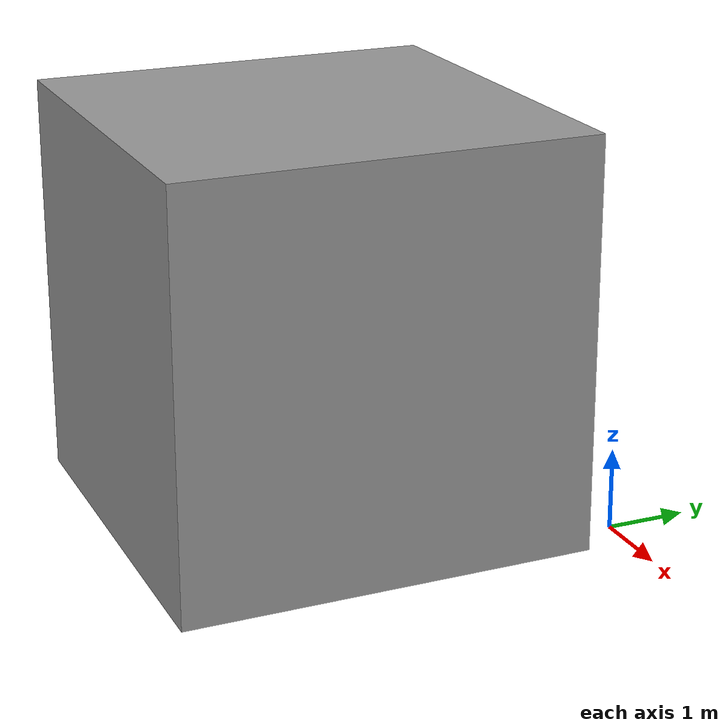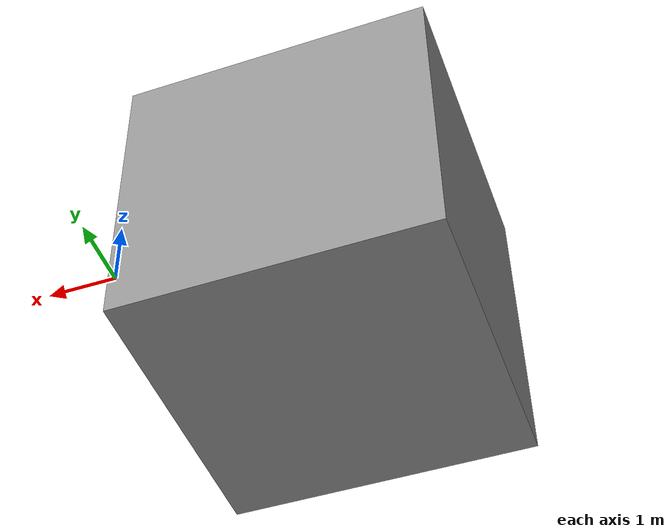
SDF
<?xml version='1.0'?>
<sdf version='1.6'>
  <model name='obstacle_cube_5m'>
      <pose>-2.06176 -3.02362 2.5 0 -0 0</pose>
      <link name='link'>
        <inertial>
          <!-- 设置很大的质量（10000），使被撞击后位移小到可以忽略 -->
          <mass>10000</mass>
          <inertia>
            <!-- 惯性矩与质量成比例增加 -->
            <!-- 对于边长5m的正方体，ixx = iyy = izz = m * a² / 6 = 10000 * 5² / 6 = 41666.67 -->
            <ixx>41666.67</ixx>
            <ixy>0</ixy>
            <ixz>0</ixz>
            <iyy>41666.67</iyy>
            <iyz>0</iyz>
            <izz>41666.67</izz>
          </inertia>
          <pose>0 0 0 0 -0 0</pose>
        </inertial>
        <collision name='collision'>
          <geometry>
            <box>
              <size>5 5 5</size>
            </box>
          </geometry>
          <max_contacts>10</max_contacts>
          <surface>
            <contact>
              <ode/>
            </contact>
            <bounce/>
            <friction>
              <torsional>
                <ode/>
              </torsional>
              <ode/>
            </friction>
          </surface>
        </collision>
        <visual name='visual'>
          <geometry>
            <box>
              <size>5 5 5</size>
            </box>
          </geometry>
          <material>
            <script>
              <name>Gazebo/Grey</name>
              <uri>file://media/materials/scripts/gazebo.material</uri>
            </script>
          </material>
        </visual>
        <self_collide>0</self_collide>
        <enable_wind>0</enable_wind>
        <kinematic>0</kinematic>
      </link>
    </model>
</sdf>
